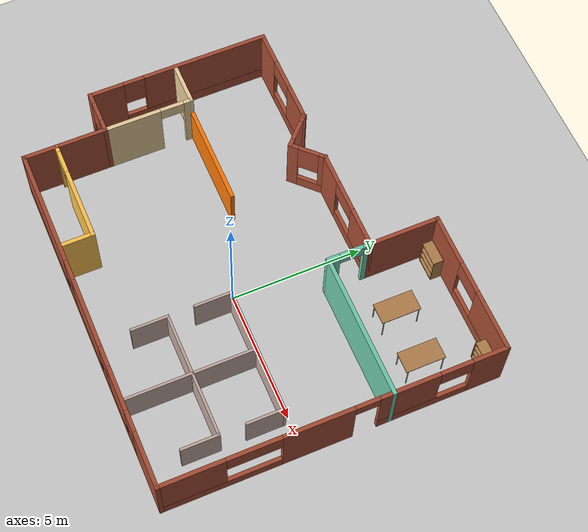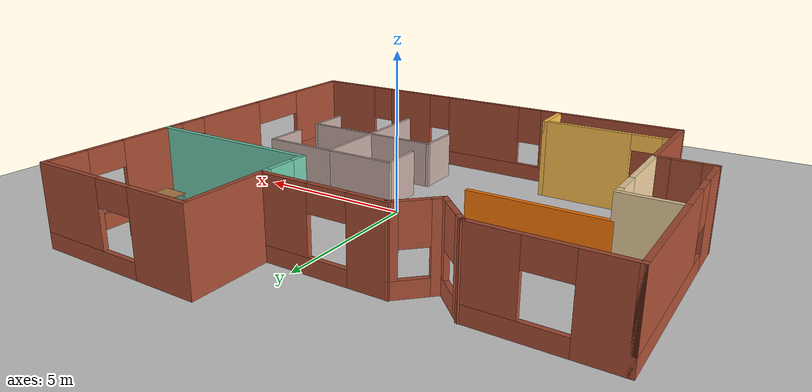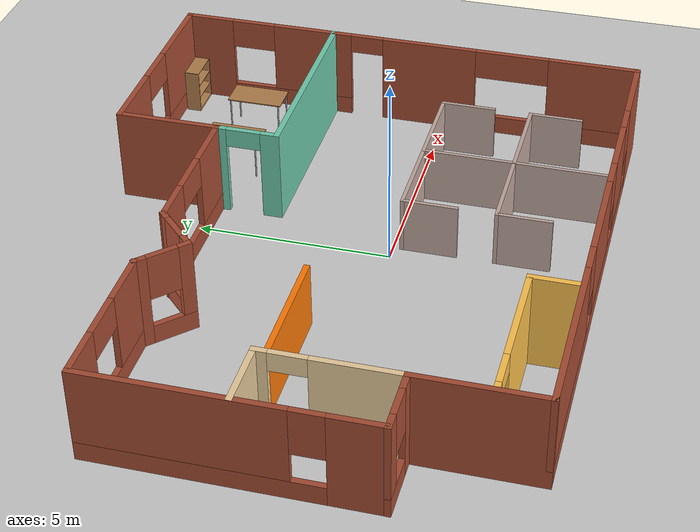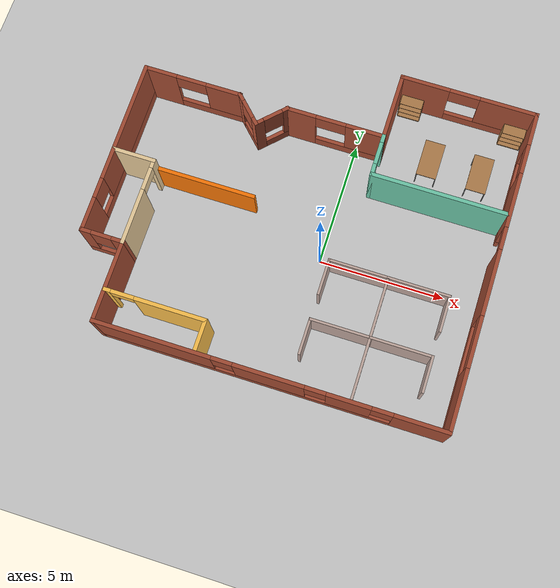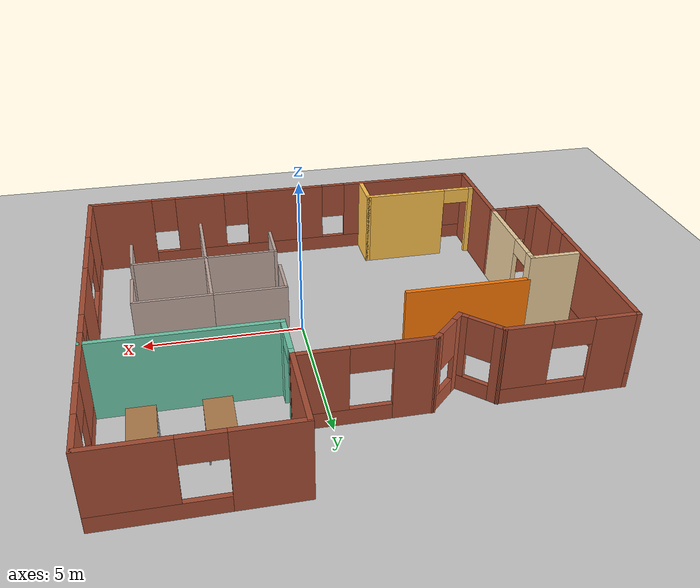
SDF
<sdf version="1.6">
 <world name="default">
  <model name="ground_plane">
   <static>1</static>
   <link name="link">
    <collision name="collision">
     <geometry><plane><normal>0 0 1</normal><size>100 100</size></plane></geometry>
     <surface><friction><ode><mu>100</mu><mu2>50</mu2></ode></friction></surface>
    </collision>
    <visual name="visual">
     <cast_shadows>0</cast_shadows>
     <geometry><plane><normal>0 0 1</normal><size>100 100</size></plane></geometry>
     <material>
      <script><uri>file://media/materials/scripts/gazebo.material</uri><name>Gazebo/Grey</name></script>
     </material>
    </visual>
   </link>
  </model>
  <model name="MyOfficeWorld">
   <pose>-1.09735 1.08179 0 0 -0 0</pose>
   <link name="Wall_33">
    <pose>-7.47671 0.275 0 0 -0 1.5708</pose>
    <visual name="Wall_33_Visual_0">
     <pose>-2.83689 0 1.25 0 -0 0</pose>
     <geometry><box><size>1.32622 0.15 2.5</size></box></geometry>
     <material>
      <script><uri>file://media/materials/scripts/gazebo.material</uri><name>Gazebo/Bricks</name></script>
      <ambient>1 1 1 1</ambient>
     </material>
     <meta><layer>0</layer></meta>
    </visual>
    <collision name="Wall_33_Collision_0">
     <geometry><box><size>1.32622 0.15 2.5</size></box></geometry>
     <pose>-2.83689 0 1.25 0 -0 0</pose>
    </collision>
    <visual name="Wall_33_Visual_1">
     <pose>0.66311 0 0.25 0 -0 0</pose>
     <geometry><box><size>5.67378 0.15 0.5</size></box></geometry>
     <material>
      <script><uri>file://media/materials/scripts/gazebo.material</uri><name>Gazebo/Bricks</name></script>
      <ambient>1 1 1 1</ambient>
     </material>
     <meta><layer>0</layer></meta>
    </visual>
    <collision name="Wall_33_Collision_1">
     <geometry><box><size>5.67378 0.15 0.5</size></box></geometry>
     <pose>0.66311 0 0.25 0 -0 0</pose>
    </collision>
    <visual name="Wall_33_Visual_2">
     <pose>1.06311 0 1.5 0 -0 0</pose>
     <geometry><box><size>4.87378 0.15 2</size></box></geometry>
     <material>
      <script><uri>file://media/materials/scripts/gazebo.material</uri><name>Gazebo/Bricks</name></script>
      <ambient>1 1 1 1</ambient>
     </material>
     <meta><layer>0</layer></meta>
    </visual>
    <collision name="Wall_33_Collision_2">
     <geometry><box><size>4.87378 0.15 2</size></box></geometry>
     <pose>1.06311 0 1.5 0 -0 0</pose>
    </collision>
    <visual name="Wall_33_Visual_3">
     <pose>-1.77378 0 1.9 0 -0 0</pose>
     <geometry><box><size>0.8 0.15 1.2</size></box></geometry>
     <material>
      <script><uri>file://media/materials/scripts/gazebo.material</uri><name>Gazebo/Bricks</name></script>
      <ambient>1 1 1 1</ambient>
     </material>
     <meta><layer>0</layer></meta>
    </visual>
    <collision name="Wall_33_Collision_3">
     <geometry><box><size>0.8 0.15 1.2</size></box></geometry>
     <pose>-1.77378 0 1.9 0 -0 0</pose>
    </collision>
   </link>
   <link name="Wall_34">
    <pose>-5.55171 3.7 0 0 -0 0</pose>
    <visual name="Wall_34_Visual_0">
     <pose>-1.33005 0 1.25 0 -0 0</pose>
     <geometry><box><size>1.3399 0.15 2.5</size></box></geometry>
     <material>
      <script><uri>file://media/materials/scripts/gazebo.material</uri><name>Gazebo/Bricks</name></script>
      <ambient>1 1 1 1</ambient>
     </material>
     <meta><layer>0</layer></meta>
    </visual>
    <collision name="Wall_34_Collision_0">
     <geometry><box><size>1.3399 0.15 2.5</size></box></geometry>
     <pose>-1.33005 0 1.25 0 -0 0</pose>
    </collision>
    <visual name="Wall_34_Visual_1">
     <pose>0.66995 0 0.25 0 -0 0</pose>
     <geometry><box><size>2.6601 0.15 0.5</size></box></geometry>
     <material>
      <script><uri>file://media/materials/scripts/gazebo.material</uri><name>Gazebo/Bricks</name></script>
      <ambient>1 1 1 1</ambient>
     </material>
     <meta><layer>0</layer></meta>
    </visual>
    <collision name="Wall_34_Collision_1">
     <geometry><box><size>2.6601 0.15 0.5</size></box></geometry>
     <pose>0.66995 0 0.25 0 -0 0</pose>
    </collision>
    <visual name="Wall_34_Visual_2">
     <pose>1.26995 0 1.5 0 -0 0</pose>
     <geometry><box><size>1.4601 0.15 2</size></box></geometry>
     <material>
      <script><uri>file://media/materials/scripts/gazebo.material</uri><name>Gazebo/Bricks</name></script>
      <ambient>1 1 1 1</ambient>
     </material>
     <meta><layer>0</layer></meta>
    </visual>
    <collision name="Wall_34_Collision_2">
     <geometry><box><size>1.4601 0.15 2</size></box></geometry>
     <pose>1.26995 0 1.5 0 -0 0</pose>
    </collision>
    <visual name="Wall_34_Visual_3">
     <pose>-0.0601 0 2.1 0 -0 0</pose>
     <geometry><box><size>1.2 0.15 0.8</size></box></geometry>
     <material>
      <script><uri>file://media/materials/scripts/gazebo.material</uri><name>Gazebo/Bricks</name></script>
      <ambient>1 1 1 1</ambient>
     </material>
     <meta><layer>0</layer></meta>
    </visual>
    <collision name="Wall_34_Collision_3">
     <geometry><box><size>1.2 0.15 0.8</size></box></geometry>
     <pose>-0.0601 0 2.1 0 -0 0</pose>
    </collision>
   </link>
   <link name="Wall_35">
    <pose>-3.14942 3.2227 0 0 0 -0.785398</pose>
    <visual name="Wall_35_Visual_0">
     <pose>-0.571464 0 1.25 0 -0 0</pose>
     <geometry><box><size>0.357073 0.15 2.5</size></box></geometry>
     <material>
      <script><uri>file://media/materials/scripts/gazebo.material</uri><name>Gazebo/Bricks</name></script>
      <ambient>1 1 1 1</ambient>
     </material>
     <meta><layer>0</layer></meta>
    </visual>
    <collision name="Wall_35_Collision_0">
     <geometry><box><size>0.357073 0.15 2.5</size></box></geometry>
     <pose>-0.571464 0 1.25 0 -0 0</pose>
    </collision>
    <visual name="Wall_35_Visual_1">
     <pose>0.178536 0 0.25 0 -0 0</pose>
     <geometry><box><size>1.14293 0.15 0.5</size></box></geometry>
     <material>
      <script><uri>file://media/materials/scripts/gazebo.material</uri><name>Gazebo/Bricks</name></script>
      <ambient>1 1 1 1</ambient>
     </material>
     <meta><layer>0</layer></meta>
    </visual>
    <collision name="Wall_35_Collision_1">
     <geometry><box><size>1.14293 0.15 0.5</size></box></geometry>
     <pose>0.178536 0 0.25 0 -0 0</pose>
    </collision>
    <visual name="Wall_35_Visual_2">
     <pose>0.578536 0 1.5 0 -0 0</pose>
     <geometry><box><size>0.342927 0.15 2</size></box></geometry>
     <material>
      <script><uri>file://media/materials/scripts/gazebo.material</uri><name>Gazebo/Bricks</name></script>
      <ambient>1 1 1 1</ambient>
     </material>
     <meta><layer>0</layer></meta>
    </visual>
    <collision name="Wall_35_Collision_2">
     <geometry><box><size>0.342927 0.15 2</size></box></geometry>
     <pose>0.578536 0 1.5 0 -0 0</pose>
    </collision>
    <visual name="Wall_35_Visual_3">
     <pose>0.007073 0 1.9 0 -0 0</pose>
     <geometry><box><size>0.8 0.15 1.2</size></box></geometry>
     <material>
      <script><uri>file://media/materials/scripts/gazebo.material</uri><name>Gazebo/Bricks</name></script>
      <ambient>1 1 1 1</ambient>
     </material>
     <meta><layer>0</layer></meta>
    </visual>
    <collision name="Wall_35_Collision_3">
     <geometry><box><size>0.8 0.15 1.2</size></box></geometry>
     <pose>0.007073 0 1.9 0 -0 0</pose>
    </collision>
   </link>
   <link name="Wall_36">
    <pose>-2.19482 3.2227 0 0 -0 0.785398</pose>
    <visual name="Wall_36_Visual_0">
     <pose>-0.549085 0 1.25 0 -0 0</pose>
     <geometry><box><size>0.40183 0.15 2.5</size></box></geometry>
     <material>
      <script><uri>file://media/materials/scripts/gazebo.material</uri><name>Gazebo/Bricks</name></script>
      <ambient>1 1 1 1</ambient>
     </material>
     <meta><layer>0</layer></meta>
    </visual>
    <collision name="Wall_36_Collision_0">
     <geometry><box><size>0.40183 0.15 2.5</size></box></geometry>
     <pose>-0.549085 0 1.25 0 -0 0</pose>
    </collision>
    <visual name="Wall_36_Visual_1">
     <pose>0.200915 0 0.25 0 -0 0</pose>
     <geometry><box><size>1.09817 0.15 0.5</size></box></geometry>
     <material>
      <script><uri>file://media/materials/scripts/gazebo.material</uri><name>Gazebo/Bricks</name></script>
      <ambient>1 1 1 1</ambient>
     </material>
     <meta><layer>0</layer></meta>
    </visual>
    <collision name="Wall_36_Collision_1">
     <geometry><box><size>1.09817 0.15 0.5</size></box></geometry>
     <pose>0.200915 0 0.25 0 -0 0</pose>
    </collision>
    <visual name="Wall_36_Visual_2">
     <pose>0.600915 0 1.5 0 -0 0</pose>
     <geometry><box><size>0.29817 0.15 2</size></box></geometry>
     <material>
      <script><uri>file://media/materials/scripts/gazebo.material</uri><name>Gazebo/Bricks</name></script>
      <ambient>1 1 1 1</ambient>
     </material>
     <meta><layer>0</layer></meta>
    </visual>
    <collision name="Wall_36_Collision_2">
     <geometry><box><size>0.29817 0.15 2</size></box></geometry>
     <pose>0.600915 0 1.5 0 -0 0</pose>
    </collision>
    <visual name="Wall_36_Visual_3">
     <pose>0.05183 0 1.9 0 -0 0</pose>
     <geometry><box><size>0.8 0.15 1.2</size></box></geometry>
     <material>
      <script><uri>file://media/materials/scripts/gazebo.material</uri><name>Gazebo/Bricks</name></script>
      <ambient>1 1 1 1</ambient>
     </material>
     <meta><layer>0</layer></meta>
    </visual>
    <collision name="Wall_36_Collision_3">
     <geometry><box><size>0.8 0.15 1.2</size></box></geometry>
     <pose>0.05183 0 1.9 0 -0 0</pose>
    </collision>
   </link>
   <link name="Wall_37">
    <pose>0.207475 3.7 0 0 -0 0</pose>
    <visual name="Wall_37_Visual_0">
     <pose>-1.38521 0 1.25 0 -0 0</pose>
     <geometry><box><size>1.22958 0.15 2.5</size></box></geometry>
     <material>
      <script><uri>file://media/materials/scripts/gazebo.material</uri><name>Gazebo/Bricks</name></script>
      <ambient>1 1 1 1</ambient>
     </material>
     <meta><layer>0</layer></meta>
    </visual>
    <collision name="Wall_37_Collision_0">
     <geometry><box><size>1.22958 0.15 2.5</size></box></geometry>
     <pose>-1.38521 0 1.25 0 -0 0</pose>
    </collision>
    <visual name="Wall_37_Visual_1">
     <pose>0.614787 0 0.25 0 -0 0</pose>
     <geometry><box><size>2.77042 0.15 0.5</size></box></geometry>
     <material>
      <script><uri>file://media/materials/scripts/gazebo.material</uri><name>Gazebo/Bricks</name></script>
      <ambient>1 1 1 1</ambient>
     </material>
     <meta><layer>0</layer></meta>
    </visual>
    <collision name="Wall_37_Collision_1">
     <geometry><box><size>2.77042 0.15 0.5</size></box></geometry>
     <pose>0.614787 0 0.25 0 -0 0</pose>
    </collision>
    <visual name="Wall_37_Visual_2">
     <pose>1.21479 0 1.5 0 -0 0</pose>
     <geometry><box><size>1.57042 0.15 2</size></box></geometry>
     <material>
      <script><uri>file://media/materials/scripts/gazebo.material</uri><name>Gazebo/Bricks</name></script>
      <ambient>1 1 1 1</ambient>
     </material>
     <meta><layer>0</layer></meta>
    </visual>
    <collision name="Wall_37_Collision_2">
     <geometry><box><size>1.57042 0.15 2</size></box></geometry>
     <pose>1.21479 0 1.5 0 -0 0</pose>
    </collision>
    <visual name="Wall_37_Visual_3">
     <pose>-0.170425 0 2.1 0 -0 0</pose>
     <geometry><box><size>1.2 0.15 0.8</size></box></geometry>
     <material>
      <script><uri>file://media/materials/scripts/gazebo.material</uri><name>Gazebo/Bricks</name></script>
      <ambient>1 1 1 1</ambient>
     </material>
     <meta><layer>0</layer></meta>
    </visual>
    <collision name="Wall_37_Collision_3">
     <geometry><box><size>1.2 0.15 0.8</size></box></geometry>
     <pose>-0.170425 0 2.1 0 -0 0</pose>
    </collision>
   </link>
   <link name="Wall_38">
    <collision name="Wall_38_Collision">
     <geometry><box><size>2.75 0.15 2.5</size></box></geometry>
     <pose>0 0 1.25 0 -0 0</pose>
    </collision>
    <visual name="Wall_38_Visual">
     <pose>0 0 1.25 0 -0 0</pose>
     <geometry><box><size>2.75 0.15 2.5</size></box></geometry>
     <material>
      <script><uri>file://media/materials/scripts/gazebo.material</uri><name>Gazebo/Bricks</name></script>
      <ambient>1 1 1 1</ambient>
     </material>
     <meta><layer>0</layer></meta>
    </visual>
    <pose>2.13247 5 0 0 -0 1.5708</pose>
   </link>
   <link name="Wall_39">
    <pose>4.80748 6.3 0 0 -0 0</pose>
    <visual name="Wall_39_Visual_0">
     <pose>-1.75799 0 1.25 0 -0 0</pose>
     <geometry><box><size>1.98402 0.15 2.5</size></box></geometry>
     <material>
      <script><uri>file://media/materials/scripts/gazebo.material</uri><name>Gazebo/Bricks</name></script>
      <ambient>1 1 1 1</ambient>
     </material>
     <meta><layer>0</layer></meta>
    </visual>
    <collision name="Wall_39_Collision_0">
     <geometry><box><size>1.98402 0.15 2.5</size></box></geometry>
     <pose>-1.75799 0 1.25 0 -0 0</pose>
    </collision>
    <visual name="Wall_39_Visual_1">
     <pose>0.992008 0 0.25 0 -0 0</pose>
     <geometry><box><size>3.51598 0.15 0.5</size></box></geometry>
     <material>
      <script><uri>file://media/materials/scripts/gazebo.material</uri><name>Gazebo/Bricks</name></script>
      <ambient>1 1 1 1</ambient>
     </material>
     <meta><layer>0</layer></meta>
    </visual>
    <collision name="Wall_39_Collision_1">
     <geometry><box><size>3.51598 0.15 0.5</size></box></geometry>
     <pose>0.992008 0 0.25 0 -0 0</pose>
    </collision>
    <visual name="Wall_39_Visual_2">
     <pose>1.59201 0 1.5 0 -0 0</pose>
     <geometry><box><size>2.31598 0.15 2</size></box></geometry>
     <material>
      <script><uri>file://media/materials/scripts/gazebo.material</uri><name>Gazebo/Bricks</name></script>
      <ambient>1 1 1 1</ambient>
     </material>
     <meta><layer>0</layer></meta>
    </visual>
    <collision name="Wall_39_Collision_2">
     <geometry><box><size>2.31598 0.15 2</size></box></geometry>
     <pose>1.59201 0 1.5 0 -0 0</pose>
    </collision>
    <visual name="Wall_39_Visual_3">
     <pose>-0.165984 0 2.1 0 -0 0</pose>
     <geometry><box><size>1.2 0.15 0.8</size></box></geometry>
     <material>
      <script><uri>file://media/materials/scripts/gazebo.material</uri><name>Gazebo/Bricks</name></script>
      <ambient>1 1 1 1</ambient>
     </material>
     <meta><layer>0</layer></meta>
    </visual>
    <collision name="Wall_39_Collision_3">
     <geometry><box><size>1.2 0.15 0.8</size></box></geometry>
     <pose>-0.165984 0 2.1 0 -0 0</pose>
    </collision>
   </link>
   <link name="Wall_45">
    <pose>2.13247 2.9 0 0 0 -1.5708</pose>
    <visual name="Wall_45_Visual_0">
     <pose>-0.705222 0 1.25 0 -0 0</pose>
     <geometry><box><size>0.339556 0.15 2.5</size></box></geometry>
     <material>
      <script><uri>file://media/materials/scripts/gazebo.material</uri><name>Gazebo/Grey</name></script>
      <ambient>0.435294 0.796078 0.67451 1</ambient>
     </material>
     <meta><layer>0</layer></meta>
    </visual>
    <collision name="Wall_45_Collision_0">
     <geometry><box><size>0.339556 0.15 2.5</size></box></geometry>
     <pose>-0.705222 0 1.25 0 -0 0</pose>
    </collision>
    <visual name="Wall_45_Visual_1">
     <pose>0.619778 0 1.25 0 -0 0</pose>
     <geometry><box><size>0.510444 0.15 2.5</size></box></geometry>
     <material>
      <script><uri>file://media/materials/scripts/gazebo.material</uri><name>Gazebo/Grey</name></script>
      <ambient>0.435294 0.796078 0.67451 1</ambient>
     </material>
     <meta><layer>0</layer></meta>
    </visual>
    <collision name="Wall_45_Collision_1">
     <geometry><box><size>0.510444 0.15 2.5</size></box></geometry>
     <pose>0.619778 0 1.25 0 -0 0</pose>
    </collision>
    <visual name="Wall_45_Visual_2">
     <pose>-0.085444 0 2.25 0 -0 0</pose>
     <geometry><box><size>0.9 0.15 0.5</size></box></geometry>
     <material>
      <script><uri>file://media/materials/scripts/gazebo.material</uri><name>Gazebo/Grey</name></script>
      <ambient>0.435294 0.796078 0.67451 1</ambient>
     </material>
     <meta><layer>0</layer></meta>
    </visual>
    <collision name="Wall_45_Collision_2">
     <geometry><box><size>0.9 0.15 0.5</size></box></geometry>
     <pose>-0.085444 0 2.25 0 -0 0</pose>
    </collision>
   </link>
   <link name="Wall_47">
    <collision name="Wall_47_Collision">
     <geometry><box><size>5.5 0.15 2.5</size></box></geometry>
     <pose>0 0 1.25 0 -0 0</pose>
    </collision>
    <visual name="Wall_47_Visual">
     <pose>0 0 1.25 0 -0 0</pose>
     <geometry><box><size>5.5 0.15 2.5</size></box></geometry>
     <material>
      <script><uri>file://media/materials/scripts/gazebo.material</uri><name>Gazebo/Grey</name></script>
      <ambient>0.435294 0.796078 0.67451 1</ambient>
     </material>
     <meta><layer>0</layer></meta>
    </visual>
    <pose>4.80748 2.1 0 0 -0 0</pose>
   </link>
   <link name="Wall_54">
    <pose>7.48247 0 0 0 0 -1.5708</pose>
    <visual name="Wall_54_Visual_0">
     <pose>-5.69597 0 1.25 0 -0 0</pose>
     <geometry><box><size>1.35805 0.15 2.5</size></box></geometry>
     <material>
      <script><uri>file://media/materials/scripts/gazebo.material</uri><name>Gazebo/Bricks</name></script>
      <ambient>1 1 1 1</ambient>
     </material>
     <meta><layer>0</layer></meta>
    </visual>
    <collision name="Wall_54_Collision_0">
     <geometry><box><size>1.35805 0.15 2.5</size></box></geometry>
     <pose>-5.69597 0 1.25 0 -0 0</pose>
    </collision>
    <visual name="Wall_54_Visual_1">
     <pose>0.610952 0 1.25 0 -0 0</pose>
     <geometry><box><size>2.60875 0.15 2.5</size></box></geometry>
     <material>
      <script><uri>file://media/materials/scripts/gazebo.material</uri><name>Gazebo/Bricks</name></script>
      <ambient>1 1 1 1</ambient>
     </material>
     <meta><layer>0</layer></meta>
    </visual>
    <collision name="Wall_54_Collision_1">
     <geometry><box><size>2.60875 0.15 2.5</size></box></geometry>
     <pose>0.610952 0 1.25 0 -0 0</pose>
    </collision>
    <visual name="Wall_54_Visual_2">
     <pose>-3.30519 0 0.25 0 -0 0</pose>
     <geometry><box><size>3.42353 0.15 0.5</size></box></geometry>
     <material>
      <script><uri>file://media/materials/scripts/gazebo.material</uri><name>Gazebo/Bricks</name></script>
      <ambient>1 1 1 1</ambient>
     </material>
     <meta><layer>0</layer></meta>
    </visual>
    <collision name="Wall_54_Collision_2">
     <geometry><box><size>3.42353 0.15 0.5</size></box></geometry>
     <pose>-3.30519 0 0.25 0 -0 0</pose>
    </collision>
    <visual name="Wall_54_Visual_3">
     <pose>4.14516 0 0.25 0 -0 0</pose>
     <geometry><box><size>4.45967 0.15 0.5</size></box></geometry>
     <material>
      <script><uri>file://media/materials/scripts/gazebo.material</uri><name>Gazebo/Bricks</name></script>
      <ambient>1 1 1 1</ambient>
     </material>
     <meta><layer>0</layer></meta>
    </visual>
    <collision name="Wall_54_Collision_3">
     <geometry><box><size>4.45967 0.15 0.5</size></box></geometry>
     <pose>4.14516 0 0.25 0 -0 0</pose>
    </collision>
    <visual name="Wall_54_Visual_4">
     <pose>-2.70519 0 1.5 0 -0 0</pose>
     <geometry><box><size>2.22352 0.15 2</size></box></geometry>
     <material>
      <script><uri>file://media/materials/scripts/gazebo.material</uri><name>Gazebo/Bricks</name></script>
      <ambient>1 1 1 1</ambient>
     </material>
     <meta><layer>0</layer></meta>
    </visual>
    <collision name="Wall_54_Collision_4">
     <geometry><box><size>2.22352 0.15 2</size></box></geometry>
     <pose>-2.70519 0 1.5 0 -0 0</pose>
    </collision>
    <visual name="Wall_54_Visual_5">
     <pose>-2.70519 0 1.5 0 -0 0</pose>
     <geometry><box><size>2.22352 0.15 2</size></box></geometry>
     <material>
      <script><uri>file://media/materials/scripts/gazebo.material</uri><name>Gazebo/Bricks</name></script>
      <ambient>1 1 1 1</ambient>
     </material>
     <meta><layer>0</layer></meta>
    </visual>
    <collision name="Wall_54_Collision_5">
     <geometry><box><size>2.22352 0.15 2</size></box></geometry>
     <pose>-2.70519 0 1.5 0 -0 0</pose>
    </collision>
    <visual name="Wall_54_Visual_6">
     <pose>5.14516 0 1.5 0 -0 0</pose>
     <geometry><box><size>2.45967 0.15 2</size></box></geometry>
     <material>
      <script><uri>file://media/materials/scripts/gazebo.material</uri><name>Gazebo/Bricks</name></script>
      <ambient>1 1 1 1</ambient>
     </material>
     <meta><layer>0</layer></meta>
    </visual>
    <collision name="Wall_54_Collision_6">
     <geometry><box><size>2.45967 0.15 2</size></box></geometry>
     <pose>5.14516 0 1.5 0 -0 0</pose>
    </collision>
    <visual name="Wall_54_Visual_7">
     <pose>-4.41695 0 2.1 0 -0 0</pose>
     <geometry><box><size>1.2 0.15 0.8</size></box></geometry>
     <material>
      <script><uri>file://media/materials/scripts/gazebo.material</uri><name>Gazebo/Bricks</name></script>
      <ambient>1 1 1 1</ambient>
     </material>
     <meta><layer>0</layer></meta>
    </visual>
    <collision name="Wall_54_Collision_7">
     <geometry><box><size>1.2 0.15 0.8</size></box></geometry>
     <pose>-4.41695 0 2.1 0 -0 0</pose>
    </collision>
    <visual name="Wall_54_Visual_8">
     <pose>2.91533 0 2.1 0 -0 0</pose>
     <geometry><box><size>2 0.15 0.8</size></box></geometry>
     <material>
      <script><uri>file://media/materials/scripts/gazebo.material</uri><name>Gazebo/Bricks</name></script>
      <ambient>1 1 1 1</ambient>
     </material>
     <meta><layer>0</layer></meta>
    </visual>
    <collision name="Wall_54_Collision_8">
     <geometry><box><size>2 0.15 0.8</size></box></geometry>
     <pose>2.91533 0 2.1 0 -0 0</pose>
    </collision>
    <visual name="Wall_54_Visual_9">
     <pose>-1.14342 0 2.25 0 -0 0</pose>
     <geometry><box><size>0.9 0.15 0.5</size></box></geometry>
     <material>
      <script><uri>file://media/materials/scripts/gazebo.material</uri><name>Gazebo/Bricks</name></script>
      <ambient>1 1 1 1</ambient>
     </material>
     <meta><layer>0</layer></meta>
    </visual>
    <collision name="Wall_54_Collision_9">
     <geometry><box><size>0.9 0.15 0.5</size></box></geometry>
     <pose>-1.14342 0 2.25 0 -0 0</pose>
    </collision>
    <visual name="Wall_54_Visual_10">
     <pose>-1.14342 0 2.25 0 -0 0</pose>
     <geometry><box><size>0.9 0.15 0.5</size></box></geometry>
     <material>
      <script><uri>file://media/materials/scripts/gazebo.material</uri><name>Gazebo/Bricks</name></script>
      <ambient>1 1 1 1</ambient>
     </material>
     <meta><layer>0</layer></meta>
    </visual>
    <collision name="Wall_54_Collision_10">
     <geometry><box><size>0.9 0.15 0.5</size></box></geometry>
     <pose>-1.14342 0 2.25 0 -0 0</pose>
    </collision>
   </link>
   <link name="Wall_55">
    <pose>0.807475 -6.3 0 0 -0 3.14159</pose>
    <visual name="Wall_55_Visual_0">
     <pose>-5.68732 0 1.25 0 -0 0</pose>
     <geometry><box><size>2.12537 0.15 2.5</size></box></geometry>
     <material>
      <script><uri>file://media/materials/scripts/gazebo.material</uri><name>Gazebo/Bricks</name></script>
      <ambient>1 1 1 1</ambient>
     </material>
     <meta><layer>0</layer></meta>
    </visual>
    <collision name="Wall_55_Collision_0">
     <geometry><box><size>2.12537 0.15 2.5</size></box></geometry>
     <pose>-5.68732 0 1.25 0 -0 0</pose>
    </collision>
    <visual name="Wall_55_Visual_1">
     <pose>1.06268 0 0.25 0 -0 0</pose>
     <geometry><box><size>11.3746 0.15 0.5</size></box></geometry>
     <material>
      <script><uri>file://media/materials/scripts/gazebo.material</uri><name>Gazebo/Bricks</name></script>
      <ambient>1 1 1 1</ambient>
     </material>
     <meta><layer>0</layer></meta>
    </visual>
    <collision name="Wall_55_Collision_1">
     <geometry><box><size>11.3746 0.15 0.5</size></box></geometry>
     <pose>1.06268 0 0.25 0 -0 0</pose>
    </collision>
    <visual name="Wall_55_Visual_2">
     <pose>-2.98241 0 1.5 0 -0 0</pose>
     <geometry><box><size>1.68445 0.15 2</size></box></geometry>
     <material>
      <script><uri>file://media/materials/scripts/gazebo.material</uri><name>Gazebo/Bricks</name></script>
      <ambient>1 1 1 1</ambient>
     </material>
     <meta><layer>0</layer></meta>
    </visual>
    <collision name="Wall_55_Collision_2">
     <geometry><box><size>1.68445 0.15 2</size></box></geometry>
     <pose>-2.98241 0 1.5 0 -0 0</pose>
    </collision>
    <visual name="Wall_55_Visual_3">
     <pose>0.012013 0 1.5 0 -0 0</pose>
     <geometry><box><size>2.70439 0.15 2</size></box></geometry>
     <material>
      <script><uri>file://media/materials/scripts/gazebo.material</uri><name>Gazebo/Bricks</name></script>
      <ambient>1 1 1 1</ambient>
     </material>
     <meta><layer>0</layer></meta>
    </visual>
    <collision name="Wall_55_Collision_3">
     <geometry><box><size>2.70439 0.15 2</size></box></geometry>
     <pose>0.012013 0 1.5 0 -0 0</pose>
    </collision>
    <visual name="Wall_55_Visual_4">
     <pose>4.4571 0 1.5 0 -0 0</pose>
     <geometry><box><size>4.58579 0.15 2</size></box></geometry>
     <material>
      <script><uri>file://media/materials/scripts/gazebo.material</uri><name>Gazebo/Bricks</name></script>
      <ambient>1 1 1 1</ambient>
     </material>
     <meta><layer>0</layer></meta>
    </visual>
    <collision name="Wall_55_Collision_4">
     <geometry><box><size>4.58579 0.15 2</size></box></geometry>
     <pose>4.4571 0 1.5 0 -0 0</pose>
    </collision>
    <visual name="Wall_55_Visual_5">
     <pose>-4.22463 0 1.9 0 -0 0</pose>
     <geometry><box><size>0.8 0.15 1.2</size></box></geometry>
     <material>
      <script><uri>file://media/materials/scripts/gazebo.material</uri><name>Gazebo/Bricks</name></script>
      <ambient>1 1 1 1</ambient>
     </material>
     <meta><layer>0</layer></meta>
    </visual>
    <collision name="Wall_55_Collision_5">
     <geometry><box><size>0.8 0.15 1.2</size></box></geometry>
     <pose>-4.22463 0 1.9 0 -0 0</pose>
    </collision>
    <visual name="Wall_55_Visual_6">
     <pose>-1.74018 0 1.9 0 -0 0</pose>
     <geometry><box><size>0.8 0.15 1.2</size></box></geometry>
     <material>
      <script><uri>file://media/materials/scripts/gazebo.material</uri><name>Gazebo/Bricks</name></script>
      <ambient>1 1 1 1</ambient>
     </material>
     <meta><layer>0</layer></meta>
    </visual>
    <collision name="Wall_55_Collision_6">
     <geometry><box><size>0.8 0.15 1.2</size></box></geometry>
     <pose>-1.74018 0 1.9 0 -0 0</pose>
    </collision>
    <visual name="Wall_55_Visual_7">
     <pose>1.76421 0 1.9 0 -0 0</pose>
     <geometry><box><size>0.8 0.15 1.2</size></box></geometry>
     <material>
      <script><uri>file://media/materials/scripts/gazebo.material</uri><name>Gazebo/Bricks</name></script>
      <ambient>1 1 1 1</ambient>
     </material>
     <meta><layer>0</layer></meta>
    </visual>
    <collision name="Wall_55_Collision_7">
     <geometry><box><size>0.8 0.15 1.2</size></box></geometry>
     <pose>1.76421 0 1.9 0 -0 0</pose>
    </collision>
   </link>
   <link name="Wall_56">
    <collision name="Wall_56_Collision">
     <geometry><box><size>3.25 0.15 2.5</size></box></geometry>
     <pose>0 0 1.25 0 -0 0</pose>
    </collision>
    <visual name="Wall_56_Visual">
     <pose>0 0 1.25 0 -0 0</pose>
     <geometry><box><size>3.25 0.15 2.5</size></box></geometry>
     <material>
      <script><uri>file://media/materials/scripts/gazebo.material</uri><name>Gazebo/Bricks</name></script>
      <ambient>1 1 1 1</ambient>
     </material>
     <meta><layer>0</layer></meta>
    </visual>
    <pose>-5.86752 -4.75 0 0 -0 1.5708</pose>
   </link>
   <link name="Wall_58">
    <pose>-6.67494 -3.19954 0 0 -0 3.14103</pose>
    <visual name="Wall_58_Visual_0">
     <pose>-0.623586 0 1.25 0 -0 0</pose>
     <geometry><box><size>0.517811 0.15 2.5</size></box></geometry>
     <material>
      <script><uri>file://media/materials/scripts/gazebo.material</uri><name>Gazebo/Bricks</name></script>
      <ambient>1 1 1 1</ambient>
     </material>
     <meta><layer>0</layer></meta>
    </visual>
    <collision name="Wall_58_Collision_0">
     <geometry><box><size>0.517811 0.15 2.5</size></box></geometry>
     <pose>-0.623586 0 1.25 0 -0 0</pose>
    </collision>
    <visual name="Wall_58_Visual_1">
     <pose>0.258905 0 0.25 0 -0 0</pose>
     <geometry><box><size>1.24717 0.15 0.5</size></box></geometry>
     <material>
      <script><uri>file://media/materials/scripts/gazebo.material</uri><name>Gazebo/Bricks</name></script>
      <ambient>1 1 1 1</ambient>
     </material>
     <meta><layer>0</layer></meta>
    </visual>
    <collision name="Wall_58_Collision_1">
     <geometry><box><size>1.24717 0.15 0.5</size></box></geometry>
     <pose>0.258905 0 0.25 0 -0 0</pose>
    </collision>
    <visual name="Wall_58_Visual_2">
     <pose>0.658905 0 1.5 0 -0 0</pose>
     <geometry><box><size>0.447171 0.15 2</size></box></geometry>
     <material>
      <script><uri>file://media/materials/scripts/gazebo.material</uri><name>Gazebo/Bricks</name></script>
      <ambient>1 1 1 1</ambient>
     </material>
     <meta><layer>0</layer></meta>
    </visual>
    <collision name="Wall_58_Collision_2">
     <geometry><box><size>0.447171 0.15 2</size></box></geometry>
     <pose>0.658905 0 1.5 0 -0 0</pose>
    </collision>
    <visual name="Wall_58_Visual_3">
     <pose>0.03532 0 1.9 0 -0 0</pose>
     <geometry><box><size>0.8 0.15 1.2</size></box></geometry>
     <material>
      <script><uri>file://media/materials/scripts/gazebo.material</uri><name>Gazebo/Bricks</name></script>
      <ambient>1 1 1 1</ambient>
     </material>
     <meta><layer>0</layer></meta>
    </visual>
    <collision name="Wall_58_Collision_3">
     <geometry><box><size>0.8 0.15 1.2</size></box></geometry>
     <pose>0.03532 0 1.9 0 -0 0</pose>
    </collision>
   </link>
   <link name="Wall_60">
    <collision name="Wall_60_Collision">
     <geometry><box><size>4.96295 0.1 1.5</size></box></geometry>
     <pose>0 0 0.75 0 -0 0</pose>
    </collision>
    <visual name="Wall_60_Visual">
     <pose>0 0 0.75 0 -0 0</pose>
     <geometry><box><size>4.96295 0.1 1.5</size></box></geometry>
     <material>
      <script><uri>file://media/materials/scripts/gazebo.material</uri><name>Gazebo/Grey</name></script>
      <ambient>0.760784 0.662745 0.627451 1</ambient>
     </material>
     <meta><layer>0</layer></meta>
    </visual>
    <pose>3.85035 -3.73329 0 0 -0 1.5708</pose>
   </link>
   <link name="Wall_76">
    <collision name="Wall_76_Collision">
     <geometry><box><size>2.49733 0.1 1.5</size></box></geometry>
     <pose>0 0 0.75 0 -0 0</pose>
    </collision>
    <visual name="Wall_76_Visual">
     <pose>0 0 0.75 0 -0 0</pose>
     <geometry><box><size>2.49733 0.1 1.5</size></box></geometry>
     <material>
      <script><uri>file://media/materials/scripts/gazebo.material</uri><name>Gazebo/Grey</name></script>
      <ambient>0.760784 0.662745 0.627451 1</ambient>
     </material>
     <meta><layer>0</layer></meta>
    </visual>
    <pose>5.04885 -1.30179 0 0 -0 0</pose>
   </link>
   <link name="Wall_77">
    <collision name="Wall_77_Collision">
     <geometry><box><size>1.46981 0.1 1.5</size></box></geometry>
     <pose>0 0 0.75 0 -0 0</pose>
    </collision>
    <visual name="Wall_77_Visual">
     <pose>0 0 0.75 0 -0 0</pose>
     <geometry><box><size>1.46981 0.1 1.5</size></box></geometry>
     <material>
      <script><uri>file://media/materials/scripts/gazebo.material</uri><name>Gazebo/Grey</name></script>
      <ambient>0.760784 0.662745 0.627451 1</ambient>
     </material>
     <meta><layer>0</layer></meta>
    </visual>
    <pose>6.24735 -1.98679 0 0 0 -1.5708</pose>
   </link>
   <link name="Wall_79">
    <collision name="Wall_79_Collision">
     <geometry><box><size>2.467 0.1 1.5</size></box></geometry>
     <pose>0 0 0.75 0 -0 0</pose>
    </collision>
    <visual name="Wall_79_Visual">
     <pose>0 0 0.75 0 -0 0</pose>
     <geometry><box><size>2.467 0.1 1.5</size></box></geometry>
     <material>
      <script><uri>file://media/materials/scripts/gazebo.material</uri><name>Gazebo/Grey</name></script>
      <ambient>0.760784 0.662745 0.627451 1</ambient>
     </material>
     <meta><layer>0</layer></meta>
    </visual>
    <pose>5.06385 -3.68479 0 0 -0 0</pose>
   </link>
   <link name="Wall_80">
    <collision name="Wall_80_Collision">
     <geometry><box><size>1.45009 0.1 1.5</size></box></geometry>
     <pose>0 0 0.75 0 -0 0</pose>
    </collision>
    <visual name="Wall_80_Visual">
     <pose>0 0 0.75 0 -0 0</pose>
     <geometry><box><size>1.45009 0.1 1.5</size></box></geometry>
     <material>
      <script><uri>file://media/materials/scripts/gazebo.material</uri><name>Gazebo/Grey</name></script>
      <ambient>0.760784 0.662745 0.627451 1</ambient>
     </material>
     <meta><layer>0</layer></meta>
    </visual>
    <pose>6.24735 -4.35979 0 0 0 -1.5708</pose>
   </link>
   <link name="Wall_85">
    <collision name="Wall_85_Collision">
     <geometry><box><size>2.447 0.1 1.5</size></box></geometry>
     <pose>0 0 0.75 0 -0 0</pose>
    </collision>
    <visual name="Wall_85_Visual">
     <pose>0 0 0.75 0 -0 0</pose>
     <geometry><box><size>2.447 0.1 1.5</size></box></geometry>
     <material>
      <script><uri>file://media/materials/scripts/gazebo.material</uri><name>Gazebo/Grey</name></script>
      <ambient>0.760784 0.662745 0.627451 1</ambient>
     </material>
     <meta><layer>0</layer></meta>
    </visual>
    <pose>2.70685 -3.68479 0 0 -0 3.14159</pose>
   </link>
   <link name="Wall_86">
    <collision name="Wall_86_Collision">
     <geometry><box><size>1.45001 0.1 1.5</size></box></geometry>
     <pose>0 0 0.75 0 -0 0</pose>
    </collision>
    <visual name="Wall_86_Visual">
     <pose>0 0 0.75 0 -0 0</pose>
     <geometry><box><size>1.45001 0.1 1.5</size></box></geometry>
     <material>
      <script><uri>file://media/materials/scripts/gazebo.material</uri><name>Gazebo/Grey</name></script>
      <ambient>0.760784 0.662745 0.627451 1</ambient>
     </material>
     <meta><layer>0</layer></meta>
    </visual>
    <pose>1.53335 -4.35979 0 0 0 -1.5708</pose>
   </link>
   <link name="Wall_89">
    <collision name="Wall_89_Collision">
     <geometry><box><size>2.417 0.1 1.5</size></box></geometry>
     <pose>0 0 0.75 0 -0 0</pose>
    </collision>
    <visual name="Wall_89_Visual">
     <pose>0 0 0.75 0 -0 0</pose>
     <geometry><box><size>2.417 0.1 1.5</size></box></geometry>
     <material>
      <script><uri>file://media/materials/scripts/gazebo.material</uri><name>Gazebo/Grey</name></script>
      <ambient>0.760784 0.662745 0.627451 1</ambient>
     </material>
     <meta><layer>0</layer></meta>
    </visual>
    <pose>2.69185 -1.30179 0 0 -0 3.14159</pose>
   </link>
   <link name="Wall_90">
    <collision name="Wall_90_Collision">
     <geometry><box><size>1.46293 0.1 1.5</size></box></geometry>
     <pose>0 0 0.75 0 -0 0</pose>
    </collision>
    <visual name="Wall_90_Visual">
     <pose>0 0 0.75 0 -0 0</pose>
     <geometry><box><size>1.46293 0.1 1.5</size></box></geometry>
     <material>
      <script><uri>file://media/materials/scripts/gazebo.material</uri><name>Gazebo/Grey</name></script>
      <ambient>0.760784 0.662745 0.627451 1</ambient>
     </material>
     <meta><layer>0</layer></meta>
    </visual>
    <pose>1.53335 -1.98329 0 0 0 -1.5708</pose>
   </link>
   <link name="Wall_92">
    <pose>-3.91363 -5.07538 0 0 -0 0</pose>
    <visual name="Wall_92_Visual_0">
     <pose>-1.85624 0 1.25 0 -0 0</pose>
     <geometry><box><size>0.287509 0.15 2.5</size></box></geometry>
     <material>
      <script><uri>file://media/materials/scripts/gazebo.material</uri><name>Gazebo/Grey</name></script>
      <ambient>1 0.764706 0.305882 1</ambient>
     </material>
     <meta><layer>0</layer></meta>
    </visual>
    <collision name="Wall_92_Collision_0">
     <geometry><box><size>0.287509 0.15 2.5</size></box></geometry>
     <pose>-1.85624 0 1.25 0 -0 0</pose>
    </collision>
    <visual name="Wall_92_Visual_1">
     <pose>0.593755 0 1.25 0 -0 0</pose>
     <geometry><box><size>2.81249 0.15 2.5</size></box></geometry>
     <material>
      <script><uri>file://media/materials/scripts/gazebo.material</uri><name>Gazebo/Grey</name></script>
      <ambient>1 0.764706 0.305882 1</ambient>
     </material>
     <meta><layer>0</layer></meta>
    </visual>
    <collision name="Wall_92_Collision_1">
     <geometry><box><size>2.81249 0.15 2.5</size></box></geometry>
     <pose>0.593755 0 1.25 0 -0 0</pose>
    </collision>
    <visual name="Wall_92_Visual_2">
     <pose>-1.26249 0 2.25 0 -0 0</pose>
     <geometry><box><size>0.9 0.15 0.5</size></box></geometry>
     <material>
      <script><uri>file://media/materials/scripts/gazebo.material</uri><name>Gazebo/Grey</name></script>
      <ambient>1 0.764706 0.305882 1</ambient>
     </material>
     <meta><layer>0</layer></meta>
    </visual>
    <collision name="Wall_92_Collision_2">
     <geometry><box><size>0.9 0.15 0.5</size></box></geometry>
     <pose>-1.26249 0 2.25 0 -0 0</pose>
    </collision>
   </link>
   <link name="Wall_93">
    <collision name="Wall_93_Collision">
     <geometry><box><size>1.25 0.15 2.5</size></box></geometry>
     <pose>0 0 1.25 0 -0 0</pose>
    </collision>
    <visual name="Wall_93_Visual">
     <pose>0 0 1.25 0 -0 0</pose>
     <geometry><box><size>1.25 0.15 2.5</size></box></geometry>
     <material>
      <script><uri>file://media/materials/scripts/gazebo.material</uri><name>Gazebo/Grey</name></script>
      <ambient>1 0.764706 0.305882 1</ambient>
     </material>
     <meta><layer>0</layer></meta>
    </visual>
    <pose>-1.98863 -5.62538 0 0 0 -1.5708</pose>
   </link>
   <link name="Wall_95">
    <collision name="Wall_95_Collision">
     <geometry><box><size>4 0.15 1.75</size></box></geometry>
     <pose>0 0 0.875 0 -0 0</pose>
    </collision>
    <visual name="Wall_95_Visual">
     <pose>0 0 0.875 0 -0 0</pose>
     <geometry><box><size>4 0.15 1.75</size></box></geometry>
     <material>
      <script><uri>file://media/materials/scripts/gazebo.material</uri><name>Gazebo/Grey</name></script>
      <ambient>0.996078 0.47451 0.0196078 1</ambient>
     </material>
     <meta><layer>0</layer></meta>
    </visual>
    <pose>-3.88815 0.151625 0 0 -0 0</pose>
   </link>
   <link name="Wall_97">
    <pose>-5.86752 -1.525 0 0 -0 1.5708</pose>
    <visual name="Wall_97_Visual_0">
     <pose>-0.641316 0 1.25 0 -0 0</pose>
     <geometry><box><size>2.21737 0.15 2.5</size></box></geometry>
     <material>
      <script><uri>file://media/materials/scripts/gazebo.material</uri><name>Gazebo/Grey</name></script>
      <ambient>0.921569 0.807843 0.615686 1</ambient>
     </material>
     <meta><layer>0</layer></meta>
    </visual>
    <collision name="Wall_97_Collision_0">
     <geometry><box><size>2.21737 0.15 2.5</size></box></geometry>
     <pose>-0.641316 0 1.25 0 -0 0</pose>
    </collision>
    <visual name="Wall_97_Visual_1">
     <pose>1.55868 0 1.25 0 -0 0</pose>
     <geometry><box><size>0.382633 0.15 2.5</size></box></geometry>
     <material>
      <script><uri>file://media/materials/scripts/gazebo.material</uri><name>Gazebo/Grey</name></script>
      <ambient>0.921569 0.807843 0.615686 1</ambient>
     </material>
     <meta><layer>0</layer></meta>
    </visual>
    <collision name="Wall_97_Collision_1">
     <geometry><box><size>0.382633 0.15 2.5</size></box></geometry>
     <pose>1.55868 0 1.25 0 -0 0</pose>
    </collision>
    <visual name="Wall_97_Visual_2">
     <pose>0.917367 0 2.25 0 -0 0</pose>
     <geometry><box><size>0.9 0.15 0.5</size></box></geometry>
     <material>
      <script><uri>file://media/materials/scripts/gazebo.material</uri><name>Gazebo/Grey</name></script>
      <ambient>0.921569 0.807843 0.615686 1</ambient>
     </material>
     <meta><layer>0</layer></meta>
    </visual>
    <collision name="Wall_97_Collision_2">
     <geometry><box><size>0.9 0.15 0.5</size></box></geometry>
     <pose>0.917367 0 2.25 0 -0 0</pose>
    </collision>
   </link>
   <link name="Wall_99">
    <collision name="Wall_99_Collision">
     <geometry><box><size>1.75 0.15 2.5</size></box></geometry>
     <pose>0 0 1.25 0 -0 0</pose>
    </collision>
    <visual name="Wall_99_Visual">
     <pose>0 0 1.25 0 -0 0</pose>
     <geometry><box><size>1.75 0.15 2.5</size></box></geometry>
     <material>
      <script><uri>file://media/materials/scripts/gazebo.material</uri><name>Gazebo/Grey</name></script>
      <ambient>0.921569 0.807843 0.615686 1</ambient>
     </material>
     <meta><layer>0</layer></meta>
    </visual>
    <pose>-6.66753 0.15 0 0 -0 3.14159</pose>
   </link>
   <static>1</static>
  </model>
  <model name="bookshelf">
   <static>1</static>
   <link name="link">
    <inertial><mass>1</mass></inertial>
    <collision name="back">
     <pose>0 0.005 0.6 0 -0 0</pose>
     <geometry><box><size>0.9 0.01 1.2</size></box></geometry>
    </collision>
    <visual name="visual1">
     <pose>0 0.005 0.6 0 -0 0</pose>
     <geometry><box><size>0.9 0.01 1.2</size></box></geometry>
     <material>
      <script><uri>file://media/materials/scripts/gazebo.material</uri><name>Gazebo/Wood</name></script>
     </material>
    </visual>
    <collision name="left_side">
     <pose>0.45 -0.195 0.6 0 -0 0</pose>
     <geometry><box><size>0.02 0.4 1.2</size></box></geometry>
    </collision>
    <visual name="visual2">
     <pose>0.45 -0.195 0.6 0 -0 0</pose>
     <geometry><box><size>0.02 0.4 1.2</size></box></geometry>
     <material>
      <script><uri>file://media/materials/scripts/gazebo.material</uri><name>Gazebo/Wood</name></script>
     </material>
    </visual>
    <collision name="right_side">
     <pose>-0.45 -0.195 0.6 0 -0 0</pose>
     <geometry><box><size>0.02 0.4 1.2</size></box></geometry>
    </collision>
    <visual name="visual3">
     <pose>-0.45 -0.195 0.6 0 -0 0</pose>
     <geometry><box><size>0.02 0.4 1.2</size></box></geometry>
     <material>
      <script><uri>file://media/materials/scripts/gazebo.material</uri><name>Gazebo/Wood</name></script>
     </material>
    </visual>
    <collision name="bottom">
     <pose>0 -0.195 0.03 0 -0 0</pose>
     <geometry><box><size>0.88 0.4 0.06</size></box></geometry>
    </collision>
    <visual name="visual4">
     <pose>0 -0.195 0.03 0 -0 0</pose>
     <geometry><box><size>0.88 0.4 0.06</size></box></geometry>
     <material>
      <script><uri>file://media/materials/scripts/gazebo.material</uri><name>Gazebo/Wood</name></script>
     </material>
    </visual>
    <collision name="top">
     <pose>0 -0.195 1.19 0 -0 0</pose>
     <geometry><box><size>0.88 0.4 0.02</size></box></geometry>
    </collision>
    <visual name="visual5">
     <pose>0 -0.195 1.19 0 -0 0</pose>
     <geometry><box><size>0.88 0.4 0.02</size></box></geometry>
     <material>
      <script><uri>file://media/materials/scripts/gazebo.material</uri><name>Gazebo/Wood</name></script>
     </material>
    </visual>
    <collision name="low_shelf">
     <pose>0 -0.195 0.43 0 -0 0</pose>
     <geometry><box><size>0.88 0.4 0.02</size></box></geometry>
    </collision>
    <visual name="visual6">
     <pose>0 -0.195 0.43 0 -0 0</pose>
     <geometry><box><size>0.88 0.4 0.02</size></box></geometry>
     <material>
      <script><uri>file://media/materials/scripts/gazebo.material</uri><name>Gazebo/Wood</name></script>
     </material>
    </visual>
    <collision name="high_shelf">
     <pose>0 -0.195 0.8 0 -0 0</pose>
     <geometry><box><size>0.88 0.4 0.02</size></box></geometry>
    </collision>
    <visual name="visual7">
     <pose>0 -0.195 0.8 0 -0 0</pose>
     <geometry><box><size>0.88 0.4 0.02</size></box></geometry>
     <material>
      <script><uri>file://media/materials/scripts/gazebo.material</uri><name>Gazebo/Wood</name></script>
     </material>
    </visual>
   </link>
   <pose>1.62564 7.26877 0 0 -0 0</pose>
  </model>
  <model name="bookshelf_0">
   <static>1</static>
   <link name="link">
    <inertial><mass>1</mass></inertial>
    <collision name="back">
     <pose>0 0.005 0.6 0 -0 0</pose>
     <geometry><box><size>0.9 0.01 1.2</size></box></geometry>
    </collision>
    <visual name="visual1">
     <pose>0 0.005 0.6 0 -0 0</pose>
     <geometry><box><size>0.9 0.01 1.2</size></box></geometry>
     <material>
      <script><uri>file://media/materials/scripts/gazebo.material</uri><name>Gazebo/Wood</name></script>
     </material>
    </visual>
    <collision name="left_side">
     <pose>0.45 -0.195 0.6 0 -0 0</pose>
     <geometry><box><size>0.02 0.4 1.2</size></box></geometry>
    </collision>
    <visual name="visual2">
     <pose>0.45 -0.195 0.6 0 -0 0</pose>
     <geometry><box><size>0.02 0.4 1.2</size></box></geometry>
     <material>
      <script><uri>file://media/materials/scripts/gazebo.material</uri><name>Gazebo/Wood</name></script>
     </material>
    </visual>
    <collision name="right_side">
     <pose>-0.45 -0.195 0.6 0 -0 0</pose>
     <geometry><box><size>0.02 0.4 1.2</size></box></geometry>
    </collision>
    <visual name="visual3">
     <pose>-0.45 -0.195 0.6 0 -0 0</pose>
     <geometry><box><size>0.02 0.4 1.2</size></box></geometry>
     <material>
      <script><uri>file://media/materials/scripts/gazebo.material</uri><name>Gazebo/Wood</name></script>
     </material>
    </visual>
    <collision name="bottom">
     <pose>0 -0.195 0.03 0 -0 0</pose>
     <geometry><box><size>0.88 0.4 0.06</size></box></geometry>
    </collision>
    <visual name="visual4">
     <pose>0 -0.195 0.03 0 -0 0</pose>
     <geometry><box><size>0.88 0.4 0.06</size></box></geometry>
     <material>
      <script><uri>file://media/materials/scripts/gazebo.material</uri><name>Gazebo/Wood</name></script>
     </material>
    </visual>
    <collision name="top">
     <pose>0 -0.195 1.19 0 -0 0</pose>
     <geometry><box><size>0.88 0.4 0.02</size></box></geometry>
    </collision>
    <visual name="visual5">
     <pose>0 -0.195 1.19 0 -0 0</pose>
     <geometry><box><size>0.88 0.4 0.02</size></box></geometry>
     <material>
      <script><uri>file://media/materials/scripts/gazebo.material</uri><name>Gazebo/Wood</name></script>
     </material>
    </visual>
    <collision name="low_shelf">
     <pose>0 -0.195 0.43 0 -0 0</pose>
     <geometry><box><size>0.88 0.4 0.02</size></box></geometry>
    </collision>
    <visual name="visual6">
     <pose>0 -0.195 0.43 0 -0 0</pose>
     <geometry><box><size>0.88 0.4 0.02</size></box></geometry>
     <material>
      <script><uri>file://media/materials/scripts/gazebo.material</uri><name>Gazebo/Wood</name></script>
     </material>
    </visual>
    <collision name="high_shelf">
     <pose>0 -0.195 0.8 0 -0 0</pose>
     <geometry><box><size>0.88 0.4 0.02</size></box></geometry>
    </collision>
    <visual name="visual7">
     <pose>0 -0.195 0.8 0 -0 0</pose>
     <geometry><box><size>0.88 0.4 0.02</size></box></geometry>
     <material>
      <script><uri>file://media/materials/scripts/gazebo.material</uri><name>Gazebo/Wood</name></script>
     </material>
    </visual>
   </link>
   <pose>5.82156 7.26877 0 0 -0 0</pose>
  </model>
  <model name="table">
   <static>1</static>
   <link name="link">
    <collision name="surface">
     <pose>0 0 1 0 -0 0</pose>
     <geometry><box><size>1.5 0.8 0.03</size></box></geometry>
     <surface><friction><ode><mu>0.6</mu><mu2>0.6</mu2></ode></friction></surface>
    </collision>
    <visual name="visual1">
     <pose>0 0 1 0 -0 0</pose>
     <geometry><box><size>1.5 0.8 0.03</size></box></geometry>
     <material>
      <script><uri>file://media/materials/scripts/gazebo.material</uri><name>Gazebo/Wood</name></script>
     </material>
    </visual>
    <collision name="front_left_leg">
     <pose>0.68 0.38 0.5 0 -0 0</pose>
     <geometry><cylinder><radius>0.02</radius><length>1</length></cylinder></geometry>
    </collision>
    <visual name="front_left_leg">
     <pose>0.68 0.38 0.5 0 -0 0</pose>
     <geometry><cylinder><radius>0.02</radius><length>1</length></cylinder></geometry>
     <material>
      <script><uri>file://media/materials/scripts/gazebo.material</uri><name>Gazebo/Grey</name></script>
     </material>
    </visual>
    <collision name="front_right_leg">
     <pose>0.68 -0.38 0.5 0 -0 0</pose>
     <geometry><cylinder><radius>0.02</radius><length>1</length></cylinder></geometry>
    </collision>
    <visual name="front_right_leg">
     <pose>0.68 -0.38 0.5 0 -0 0</pose>
     <geometry><cylinder><radius>0.02</radius><length>1</length></cylinder></geometry>
     <material>
      <script><uri>file://media/materials/scripts/gazebo.material</uri><name>Gazebo/Grey</name></script>
     </material>
    </visual>
    <collision name="back_right_leg">
     <pose>-0.68 -0.38 0.5 0 -0 0</pose>
     <geometry><cylinder><radius>0.02</radius><length>1</length></cylinder></geometry>
    </collision>
    <visual name="back_right_leg">
     <pose>-0.68 -0.38 0.5 0 -0 0</pose>
     <geometry><cylinder><radius>0.02</radius><length>1</length></cylinder></geometry>
     <material>
      <script><uri>file://media/materials/scripts/gazebo.material</uri><name>Gazebo/Grey</name></script>
     </material>
    </visual>
    <collision name="back_left_leg">
     <pose>-0.68 0.38 0.5 0 -0 0</pose>
     <geometry><cylinder><radius>0.02</radius><length>1</length></cylinder></geometry>
    </collision>
    <visual name="back_left_leg">
     <pose>-0.68 0.38 0.5 0 -0 0</pose>
     <geometry><cylinder><radius>0.02</radius><length>1</length></cylinder></geometry>
     <material>
      <script><uri>file://media/materials/scripts/gazebo.material</uri><name>Gazebo/Grey</name></script>
     </material>
    </visual>
   </link>
   <pose>2.99948 5.02113 0 0 -0 1.5707</pose>
  </model>
  <model name="table_0">
   <static>1</static>
   <link name="link">
    <collision name="surface">
     <pose>0 0 1 0 -0 0</pose>
     <geometry><box><size>1.5 0.8 0.03</size></box></geometry>
     <surface><friction><ode><mu>0.6</mu><mu2>0.6</mu2></ode></friction></surface>
    </collision>
    <visual name="visual1">
     <pose>0 0 1 0 -0 0</pose>
     <geometry><box><size>1.5 0.8 0.03</size></box></geometry>
     <material>
      <script><uri>file://media/materials/scripts/gazebo.material</uri><name>Gazebo/Wood</name></script>
     </material>
    </visual>
    <collision name="front_left_leg">
     <pose>0.68 0.38 0.5 0 -0 0</pose>
     <geometry><cylinder><radius>0.02</radius><length>1</length></cylinder></geometry>
    </collision>
    <visual name="front_left_leg">
     <pose>0.68 0.38 0.5 0 -0 0</pose>
     <geometry><cylinder><radius>0.02</radius><length>1</length></cylinder></geometry>
     <material>
      <script><uri>file://media/materials/scripts/gazebo.material</uri><name>Gazebo/Grey</name></script>
     </material>
    </visual>
    <collision name="front_right_leg">
     <pose>0.68 -0.38 0.5 0 -0 0</pose>
     <geometry><cylinder><radius>0.02</radius><length>1</length></cylinder></geometry>
    </collision>
    <visual name="front_right_leg">
     <pose>0.68 -0.38 0.5 0 -0 0</pose>
     <geometry><cylinder><radius>0.02</radius><length>1</length></cylinder></geometry>
     <material>
      <script><uri>file://media/materials/scripts/gazebo.material</uri><name>Gazebo/Grey</name></script>
     </material>
    </visual>
    <collision name="back_right_leg">
     <pose>-0.68 -0.38 0.5 0 -0 0</pose>
     <geometry><cylinder><radius>0.02</radius><length>1</length></cylinder></geometry>
    </collision>
    <visual name="back_right_leg">
     <pose>-0.68 -0.38 0.5 0 -0 0</pose>
     <geometry><cylinder><radius>0.02</radius><length>1</length></cylinder></geometry>
     <material>
      <script><uri>file://media/materials/scripts/gazebo.material</uri><name>Gazebo/Grey</name></script>
     </material>
    </visual>
    <collision name="back_left_leg">
     <pose>-0.68 0.38 0.5 0 -0 0</pose>
     <geometry><cylinder><radius>0.02</radius><length>1</length></cylinder></geometry>
    </collision>
    <visual name="back_left_leg">
     <pose>-0.68 0.38 0.5 0 -0 0</pose>
     <geometry><cylinder><radius>0.02</radius><length>1</length></cylinder></geometry>
     <material>
      <script><uri>file://media/materials/scripts/gazebo.material</uri><name>Gazebo/Grey</name></script>
     </material>
    </visual>
   </link>
   <pose>5 5 0 0 -0 1.57073</pose>
  </model>
 </world>
</sdf>
